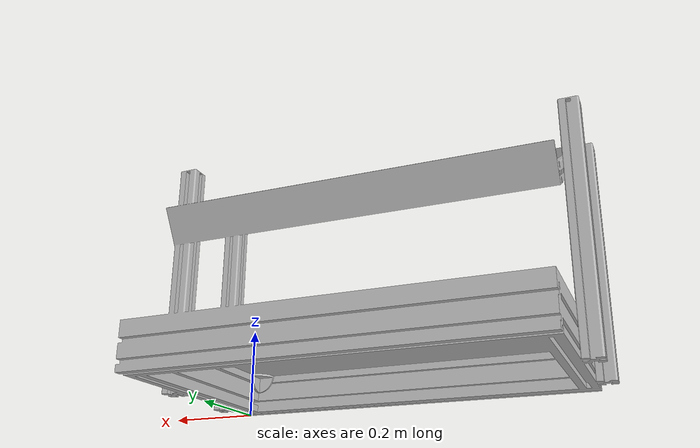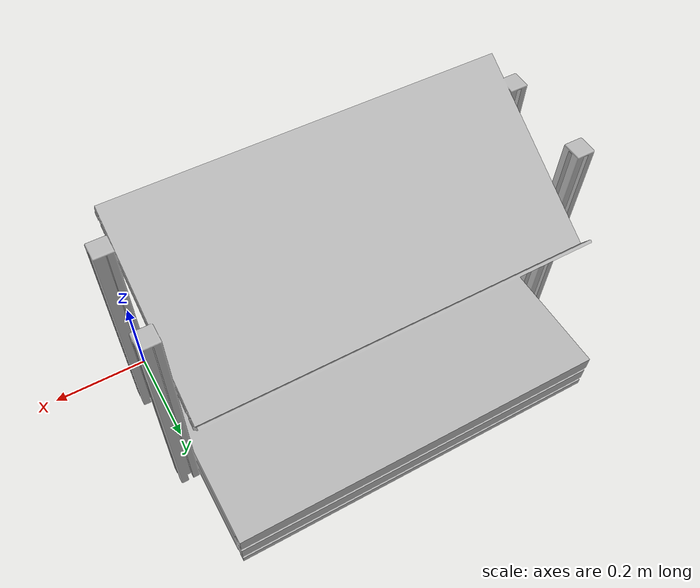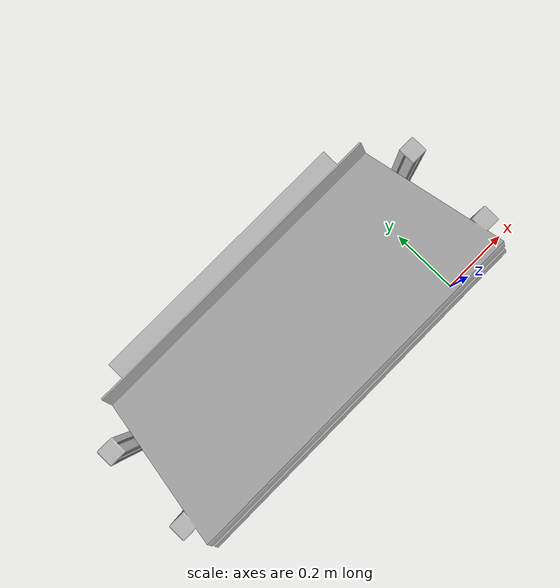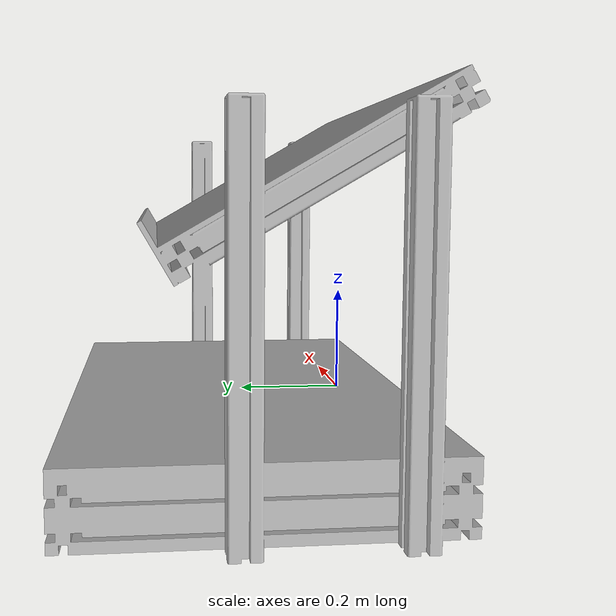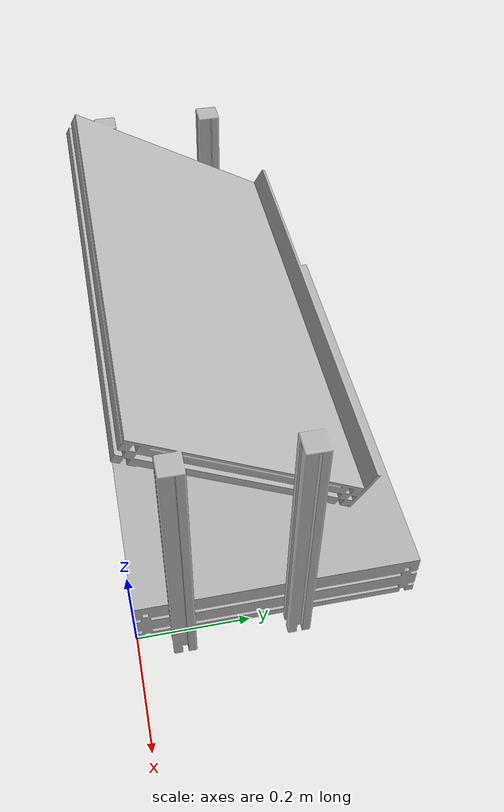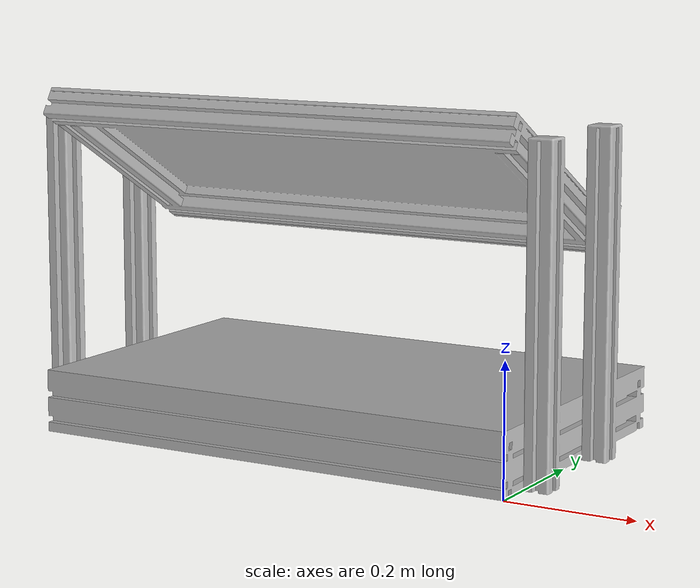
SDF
<?xml version="1.0" ?>
<sdf version="1.4">
  <model name="shelf_assembly_90degree">
    <static>true</static>
    <link name="link">
      <pose>0 0 0 0 0 0</pose>
      <collision name="collision">
        <geometry>
          <mesh>
            <uri>model://shelf_assembly_90degree/meshes/shelf_assembly_90degree.dae</uri>
          </mesh>
        </geometry>
      </collision>
      <visual name="visual">
        <geometry>
          <mesh>
            <uri>model://shelf_assembly_90degree/meshes/shelf_assembly_90degree.dae</uri>
          </mesh>
        </geometry>
      </visual>
    </link>
  </model>
</sdf>
